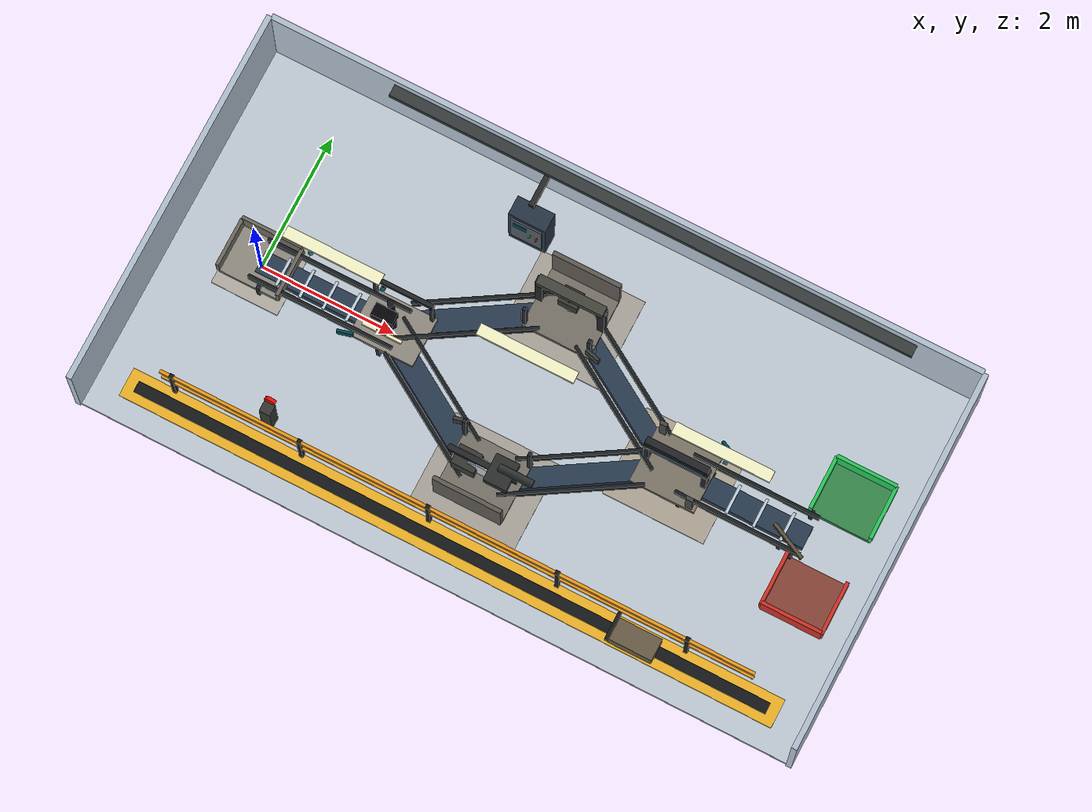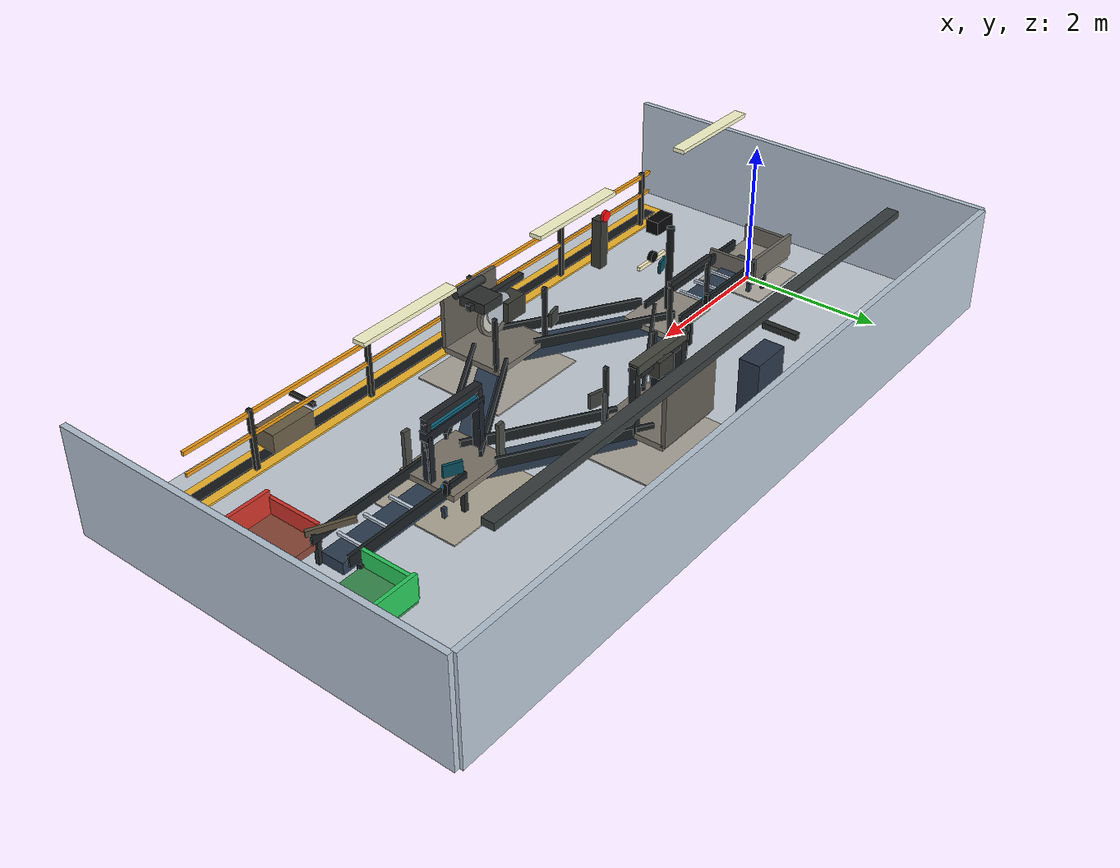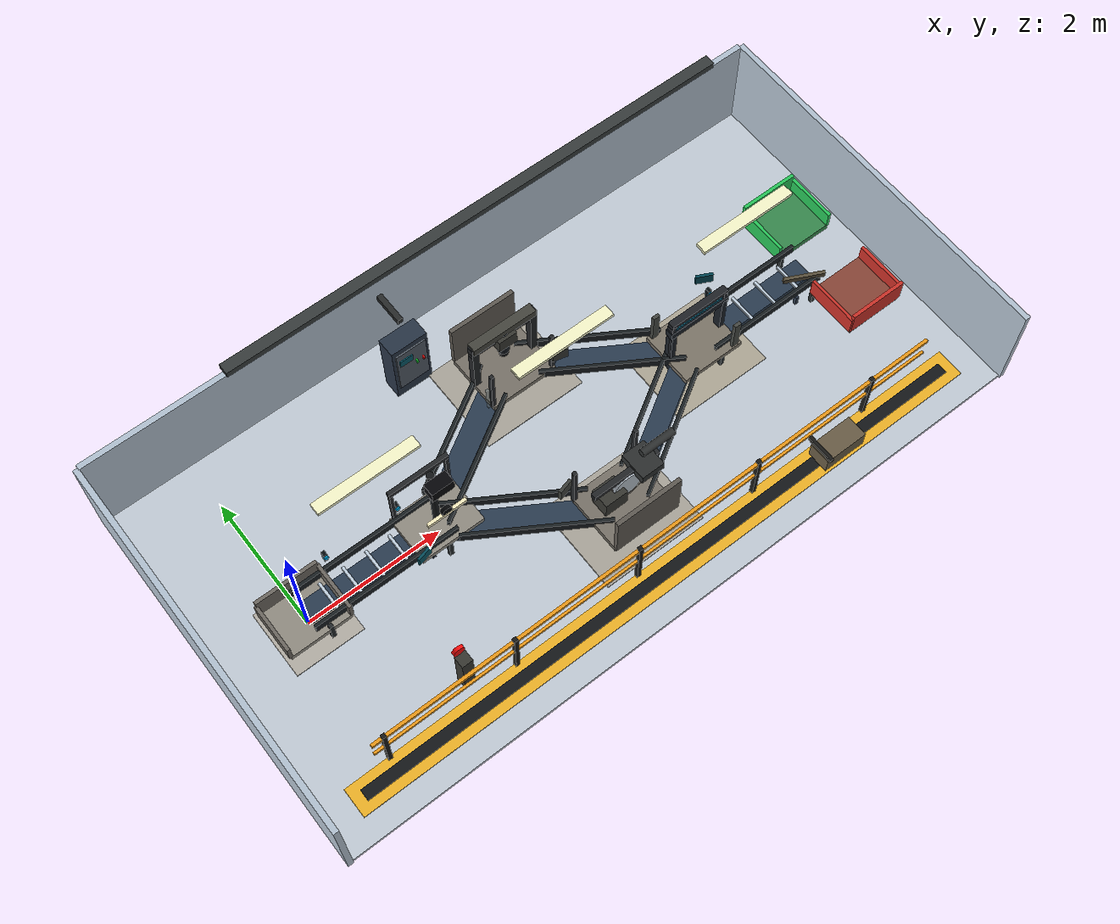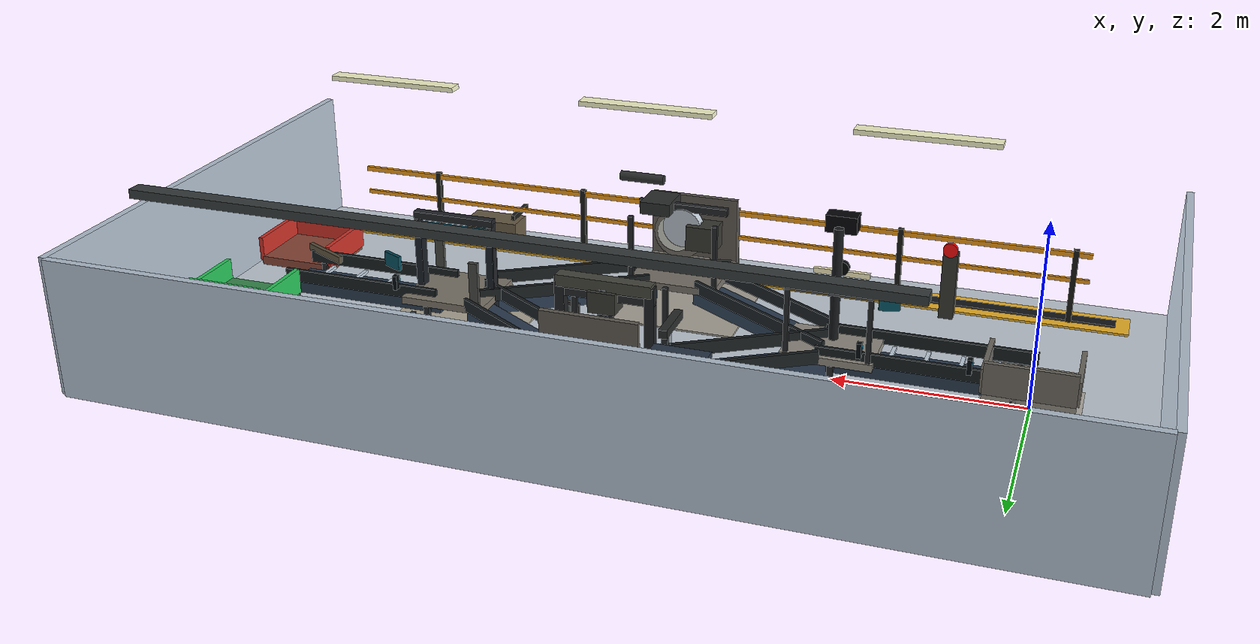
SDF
<?xml version="1.0" ?>
<sdf version="1.10">
  <world name="reconfactory_world">
    <plugin
      filename="gz-sim-physics-system"
      name="gz::sim::systems::Physics" />
    <plugin
      filename="gz-sim-user-commands-system"
      name="gz::sim::systems::UserCommands" />
    <plugin
      filename="gz-sim-sensors-system"
      name="gz::sim::systems::Sensors" />
    <plugin
      filename="gz-sim-scene-broadcaster-system"
      name="gz::sim::systems::SceneBroadcaster" />

    <physics name="default_physics" type="ode">
      <max_step_size>0.01</max_step_size>
      <real_time_factor>1.0</real_time_factor>
    </physics>

    <scene>
      <ambient>0.72 0.76 0.82 1</ambient>
      <background>0.86 0.91 0.96 1</background>
      <shadows>true</shadows>
    </scene>

    <gui fullscreen="false">
      <camera name="user_camera">
        <pose>4.8 -7.8 5.2 0 0.58 0.68</pose>
      </camera>
    </gui>

    <light name="sun" type="directional">
      <pose>0 0 9 0 0 0</pose>
      <diffuse>0.95 0.95 0.9 1</diffuse>
      <specular>0.25 0.25 0.25 1</specular>
      <direction>-0.45 0.25 -1</direction>
    </light>

    <light name="factory_area_light" type="point">
      <pose>4 0 5 0 0 0</pose>
      <diffuse>0.8 0.86 1.0 1</diffuse>
      <specular>0.3 0.3 0.3 1</specular>
      <attenuation>
        <range>15</range>
        <constant>0.8</constant>
        <linear>0.02</linear>
        <quadratic>0.002</quadratic>
      </attenuation>
    </light>

    <model name="factory_floor">
      <static>true</static>
      <pose>4 0 -0.03 0 0 0</pose>
      <link name="floor_link">
        <collision name="collision">
          <geometry><box><size>10.5 5.5 0.06</size></box></geometry>
        </collision>
        <visual name="visual">
          <geometry><box><size>10.5 5.5 0.06</size></box></geometry>
          <material>
            <ambient>0.78 0.82 0.86 1</ambient>
            <diffuse>0.78 0.82 0.86 1</diffuse>
            <specular>0.12 0.12 0.12 1</specular>
          </material>
        </visual>
      </link>
    </model>

    <model name="factory_shell_and_safety_details">
      <static>true</static>
      <pose>0 0 0 0 0 0</pose>
      <link name="details">
        <visual name="back_wall">
          <pose>4 2.78 0.72 0 0 0</pose>
          <geometry><box><size>10.5 0.08 1.5</size></box></geometry>
          <material><ambient>0.72 0.78 0.84 1</ambient><diffuse>0.72 0.78 0.84 1</diffuse></material>
        </visual>
        <visual name="left_wall">
          <pose>-1.28 0 0.72 0 0 0</pose>
          <geometry><box><size>0.08 5.55 1.5</size></box></geometry>
          <material><ambient>0.72 0.78 0.84 1</ambient><diffuse>0.72 0.78 0.84 1</diffuse></material>
        </visual>
        <visual name="right_wall">
          <pose>9.28 0 0.72 0 0 0</pose>
          <geometry><box><size>0.08 5.55 1.5</size></box></geometry>
          <material><ambient>0.72 0.78 0.84 1</ambient><diffuse>0.72 0.78 0.84 1</diffuse></material>
        </visual>
        <visual name="operator_walkway">
          <pose>4 -2.22 0.02 0 0 0</pose>
          <geometry><box><size>9.7 0.42 0.025</size></box></geometry>
          <material><ambient>0.96 0.72 0.16 1</ambient><diffuse>0.96 0.72 0.16 1</diffuse></material>
        </visual>
        <visual name="walkway_center">
          <pose>4 -2.22 0.04 0 0 0</pose>
          <geometry><box><size>9.4 0.16 0.025</size></box></geometry>
          <material><ambient>0.08 0.09 0.10 1</ambient><diffuse>0.08 0.09 0.10 1</diffuse></material>
        </visual>
        <visual name="input_zone_marking">
          <pose>0 0 0.015 0 0 0</pose>
          <geometry><box><size>1.0 1.0 0.02</size></box></geometry>
          <material><ambient>0.72 0.70 0.66 1</ambient><diffuse>0.72 0.70 0.66 1</diffuse></material>
        </visual>
        <visual name="cell_a_zone_marking">
          <pose>4 1.25 0.015 0 0 0</pose>
          <geometry><box><size>1.55 1.35 0.02</size></box></geometry>
          <material><ambient>0.68 0.66 0.62 1</ambient><diffuse>0.68 0.66 0.62 1</diffuse></material>
        </visual>
        <visual name="cell_b_zone_marking">
          <pose>4 -1.25 0.015 0 0 0</pose>
          <geometry><box><size>1.55 1.35 0.02</size></box></geometry>
          <material><ambient>0.68 0.66 0.62 1</ambient><diffuse>0.68 0.66 0.62 1</diffuse></material>
        </visual>
        <visual name="quality_zone_marking">
          <pose>6.2 0 0.015 0 0 0</pose>
          <geometry><box><size>1.5 1.3 0.02</size></box></geometry>
          <material><ambient>0.70 0.67 0.60 1</ambient><diffuse>0.70 0.67 0.60 1</diffuse></material>
        </visual>
        <visual name="overhead_light_1"><pose>1.2 0 2.7 0 0 0</pose><geometry><box><size>1.4 0.16 0.05</size></box></geometry><material><ambient>1 1 0.82 1</ambient><diffuse>1 1 0.82 1</diffuse><emissive>0.55 0.55 0.35 1</emissive></material></visual>
        <visual name="overhead_light_2"><pose>4.0 0 2.7 0 0 0</pose><geometry><box><size>1.4 0.16 0.05</size></box></geometry><material><ambient>1 1 0.82 1</ambient><diffuse>1 1 0.82 1</diffuse><emissive>0.55 0.55 0.35 1</emissive></material></visual>
        <visual name="overhead_light_3"><pose>6.8 0 2.7 0 0 0</pose><geometry><box><size>1.4 0.16 0.05</size></box></geometry><material><ambient>1 1 0.82 1</ambient><diffuse>1 1 0.82 1</diffuse><emissive>0.55 0.55 0.35 1</emissive></material></visual>
      </link>
    </model>

    <model name="conveyor_rollers_supports_and_machine_panels">
      <static>true</static>
      <pose>0 0 0 0 0 0</pose>
      <link name="details">
        <visual name="main_roller_1"><pose>0.35 0 0.355 0 0 0</pose><geometry><box><size>0.04 0.42 0.035</size></box></geometry><material><ambient>0.78 0.84 0.9 1</ambient><diffuse>0.78 0.84 0.9 1</diffuse></material></visual>
        <visual name="main_roller_2"><pose>0.7 0 0.355 0 0 0</pose><geometry><box><size>0.04 0.42 0.035</size></box></geometry><material><ambient>0.78 0.84 0.9 1</ambient><diffuse>0.78 0.84 0.9 1</diffuse></material></visual>
        <visual name="main_roller_3"><pose>1.05 0 0.355 0 0 0</pose><geometry><box><size>0.04 0.42 0.035</size></box></geometry><material><ambient>0.78 0.84 0.9 1</ambient><diffuse>0.78 0.84 0.9 1</diffuse></material></visual>
        <visual name="main_roller_4"><pose>1.4 0 0.355 0 0 0</pose><geometry><box><size>0.04 0.42 0.035</size></box></geometry><material><ambient>0.78 0.84 0.9 1</ambient><diffuse>0.78 0.84 0.9 1</diffuse></material></visual>
        <visual name="main_roller_5"><pose>1.75 0 0.355 0 0 0</pose><geometry><box><size>0.04 0.42 0.035</size></box></geometry><material><ambient>0.78 0.84 0.9 1</ambient><diffuse>0.78 0.84 0.9 1</diffuse></material></visual>
        <visual name="out_roller_1"><pose>6.65 0 0.355 0 0 0</pose><geometry><box><size>0.04 0.42 0.035</size></box></geometry><material><ambient>0.78 0.84 0.9 1</ambient><diffuse>0.78 0.84 0.9 1</diffuse></material></visual>
        <visual name="out_roller_2"><pose>7.05 0 0.355 0 0 0</pose><geometry><box><size>0.04 0.42 0.035</size></box></geometry><material><ambient>0.78 0.84 0.9 1</ambient><diffuse>0.78 0.84 0.9 1</diffuse></material></visual>
        <visual name="out_roller_3"><pose>7.45 0 0.355 0 0 0</pose><geometry><box><size>0.04 0.42 0.035</size></box></geometry><material><ambient>0.78 0.84 0.9 1</ambient><diffuse>0.78 0.84 0.9 1</diffuse></material></visual>
        <visual name="out_roller_4"><pose>7.85 0 0.355 0 0 0</pose><geometry><box><size>0.04 0.42 0.035</size></box></geometry><material><ambient>0.78 0.84 0.9 1</ambient><diffuse>0.78 0.84 0.9 1</diffuse></material></visual>
        <visual name="leg_1"><pose>0.35 0.23 0.0 0 0 0</pose><geometry><box><size>0.05 0.05 0.32</size></box></geometry><material><ambient>0.18 0.23 0.3 1</ambient><diffuse>0.18 0.23 0.3 1</diffuse></material></visual>
        <visual name="leg_2"><pose>1.75 -0.23 0.0 0 0 0</pose><geometry><box><size>0.05 0.05 0.32</size></box></geometry><material><ambient>0.18 0.23 0.3 1</ambient><diffuse>0.18 0.23 0.3 1</diffuse></material></visual>
        <visual name="leg_3"><pose>6.65 0.23 0.0 0 0 0</pose><geometry><box><size>0.05 0.05 0.32</size></box></geometry><material><ambient>0.18 0.23 0.3 1</ambient><diffuse>0.18 0.23 0.3 1</diffuse></material></visual>
        <visual name="leg_4"><pose>7.85 -0.23 0.0 0 0 0</pose><geometry><box><size>0.05 0.05 0.32</size></box></geometry><material><ambient>0.18 0.23 0.3 1</ambient><diffuse>0.18 0.23 0.3 1</diffuse></material></visual>
        <visual name="plc_cabinet">
          <pose>3.0 2.05 0.55 0 0 0</pose>
          <geometry><box><size>0.55 0.28 1.1</size></box></geometry>
          <material><ambient>0.16 0.21 0.28 1</ambient><diffuse>0.16 0.21 0.28 1</diffuse></material>
        </visual>
        <visual name="drill_head">
          <pose>4.0 1.25 1.05 0 0 0</pose>
          <geometry><cylinder><radius>0.08</radius><length>0.45</length></cylinder></geometry>
          <material><ambient>0.08 0.1 0.12 1</ambient><diffuse>0.08 0.1 0.12 1</diffuse></material>
        </visual>
        <visual name="polish_wheel">
          <pose>4.0 -1.25 0.96 1.5708 0 0</pose>
          <geometry><cylinder><radius>0.22</radius><length>0.12</length></cylinder></geometry>
          <material><ambient>0.74 0.78 0.82 1</ambient><diffuse>0.74 0.78 0.82 1</diffuse></material>
        </visual>
        <visual name="quality_scan_arch_top">
          <pose>6.2 0 1.05 0 0 0</pose>
          <geometry><box><size>0.95 0.12 0.12</size></box></geometry>
          <material><ambient>0.1 0.12 0.15 1</ambient><diffuse>0.1 0.12 0.15 1</diffuse></material>
        </visual>
        <visual name="quality_scan_arch_left">
          <pose>5.78 0 0.62 0 0 0</pose>
          <geometry><box><size>0.08 0.12 0.86</size></box></geometry>
          <material><ambient>0.1 0.12 0.15 1</ambient><diffuse>0.1 0.12 0.15 1</diffuse></material>
        </visual>
        <visual name="quality_scan_arch_right">
          <pose>6.62 0 0.62 0 0 0</pose>
          <geometry><box><size>0.08 0.12 0.86</size></box></geometry>
          <material><ambient>0.1 0.12 0.15 1</ambient><diffuse>0.1 0.12 0.15 1</diffuse></material>
        </visual>
      </link>
    </model>

    <!-- Main input, routing branches, and output conveyors. -->
    <model name="conveyor_input_to_vision">
      <static>true</static>
      <pose>1.05 0 0.24 0 0 0</pose>
      <link name="body">
        <collision name="collision"><geometry><box><size>2.1 0.32 0.16</size></box></geometry></collision>
        <visual name="belt"><geometry><box><size>2.1 0.32 0.16</size></box></geometry><material><ambient>0.17 0.24 0.32 1</ambient><diffuse>0.17 0.24 0.32 1</diffuse></material></visual>
      </link>
    </model>
    <model name="junction_to_station_a">
      <static>true</static>
      <pose>2.9 0.62 0.24 0 0 0.55</pose>
      <link name="body">
        <collision name="collision"><geometry><box><size>1.9 0.32 0.16</size></box></geometry></collision>
        <visual name="belt"><geometry><box><size>1.9 0.32 0.16</size></box></geometry><material><ambient>0.17 0.24 0.32 1</ambient><diffuse>0.17 0.24 0.32 1</diffuse></material></visual>
      </link>
    </model>
    <model name="junction_to_station_b">
      <static>true</static>
      <pose>2.9 -0.62 0.24 0 0 -0.55</pose>
      <link name="body">
        <collision name="collision"><geometry><box><size>1.9 0.32 0.16</size></box></geometry></collision>
        <visual name="belt"><geometry><box><size>1.9 0.32 0.16</size></box></geometry><material><ambient>0.17 0.24 0.32 1</ambient><diffuse>0.17 0.24 0.32 1</diffuse></material></visual>
      </link>
    </model>
    <model name="station_a_to_quality">
      <static>true</static>
      <pose>5.1 0.62 0.24 0 0 -0.55</pose>
      <link name="body">
        <collision name="collision"><geometry><box><size>1.9 0.28 0.16</size></box></geometry></collision>
        <visual name="belt"><geometry><box><size>1.9 0.28 0.16</size></box></geometry><material><ambient>0.17 0.24 0.32 1</ambient><diffuse>0.17 0.24 0.32 1</diffuse></material></visual>
      </link>
    </model>
    <model name="station_b_to_quality">
      <static>true</static>
      <pose>5.1 -0.62 0.24 0 0 0.55</pose>
      <link name="body">
        <collision name="collision"><geometry><box><size>1.9 0.28 0.16</size></box></geometry></collision>
        <visual name="belt"><geometry><box><size>1.9 0.28 0.16</size></box></geometry><material><ambient>0.17 0.24 0.32 1</ambient><diffuse>0.17 0.24 0.32 1</diffuse></material></visual>
      </link>
    </model>
    <model name="quality_to_outputs">
      <static>true</static>
      <pose>7.25 0 0.24 0 0 0</pose>
      <link name="body">
        <collision name="collision"><geometry><box><size>1.8 0.32 0.16</size></box></geometry></collision>
        <visual name="belt"><geometry><box><size>1.8 0.32 0.16</size></box></geometry><material><ambient>0.17 0.24 0.32 1</ambient><diffuse>0.17 0.24 0.32 1</diffuse></material></visual>
      </link>
    </model>

    <!-- Stations use distinct colors so faults and routing are understandable from a screenshot. -->
    <model name="input_station">
      <static>true</static>
      <pose>0 0 0.32 0 0 0</pose>
      <link name="body">
        <visual name="low_tray"><pose>0 0 -0.06 0 0 0</pose><geometry><box><size>0.9 0.72 0.08</size></box></geometry><material><ambient>0.50 0.49 0.46 1</ambient><diffuse>0.58 0.56 0.52 1</diffuse></material></visual>
        <visual name="rear_lip"><pose>0 0.36 0.14 0 0 0</pose><geometry><box><size>0.9 0.05 0.34</size></box></geometry><material><ambient>0.36 0.35 0.33 1</ambient><diffuse>0.44 0.42 0.39 1</diffuse></material></visual>
        <visual name="left_lip"><pose>-0.45 0 0.10 0 0 0</pose><geometry><box><size>0.05 0.72 0.26</size></box></geometry><material><ambient>0.36 0.35 0.33 1</ambient><diffuse>0.44 0.42 0.39 1</diffuse></material></visual>
        <visual name="right_lip"><pose>0.45 0 0.10 0 0 0</pose><geometry><box><size>0.05 0.72 0.26</size></box></geometry><material><ambient>0.36 0.35 0.33 1</ambient><diffuse>0.44 0.42 0.39 1</diffuse></material></visual>
      </link>
    </model>
    <model name="vision_camera_station">
      <static>true</static>
      <pose>2.0 0 0.42 0 0 0</pose>
      <link name="body">
        <visual name="inspection_table"><pose>0 0 -0.05 0 0 0</pose><geometry><box><size>0.95 0.72 0.08</size></box></geometry><material><ambient>0.50 0.49 0.46 1</ambient><diffuse>0.58 0.56 0.52 1</diffuse></material></visual>
        <visual name="left_post"><pose>-0.42 0.32 0.34 0 0 0</pose><geometry><box><size>0.05 0.05 0.72</size></box></geometry><material><ambient>0.12 0.13 0.14 1</ambient><diffuse>0.14 0.15 0.16 1</diffuse></material></visual>
        <visual name="right_post"><pose>0.42 0.32 0.34 0 0 0</pose><geometry><box><size>0.05 0.05 0.72</size></box></geometry><material><ambient>0.12 0.13 0.14 1</ambient><diffuse>0.14 0.15 0.16 1</diffuse></material></visual>
        <visual name="top_bar"><pose>0 0.32 0.72 0 0 0</pose><geometry><box><size>0.9 0.06 0.08</size></box></geometry><material><ambient>0.12 0.13 0.14 1</ambient><diffuse>0.14 0.15 0.16 1</diffuse></material></visual>
        <visual name="camera_pole"><pose>0 0 0.65 0 0 0</pose><geometry><cylinder><radius>0.05</radius><length>1.2</length></cylinder></geometry><material><ambient>0.08 0.09 0.1 1</ambient><diffuse>0.08 0.09 0.1 1</diffuse></material></visual>
        <visual name="camera_head"><pose>0 -0.18 1.25 0 0 0</pose><geometry><box><size>0.32 0.18 0.18</size></box></geometry><material><ambient>0.02 0.02 0.03 1</ambient><diffuse>0.02 0.02 0.03 1</diffuse></material></visual>
        <sensor name="rgb_inspection_camera" type="camera">
          <!-- Place the lens below the opaque camera housing, looking down. -->
          <pose>0 -0.22 1.14 0 1.5708 0</pose>
          <topic>/reconfactory/vision/image_raw</topic>
          <update_rate>15</update_rate>
          <camera>
            <horizontal_fov>1.20</horizontal_fov>
            <image>
              <width>640</width>
              <height>480</height>
              <format>R8G8B8</format>
            </image>
            <clip>
              <near>0.05</near>
              <far>8.0</far>
            </clip>
          </camera>
          <always_on>true</always_on>
          <visualize>true</visualize>
        </sensor>
      </link>
    </model>
    <model name="processing_station_a">
      <static>true</static>
      <pose>4.0 1.25 0.45 0 0 0</pose>
      <link name="body">
        <visual name="work_plate"><pose>0 0 -0.05 0 0 0</pose><geometry><box><size>1.0 0.9 0.08</size></box></geometry><material><ambient>0.40 0.39 0.36 1</ambient><diffuse>0.48 0.46 0.42 1</diffuse></material></visual>
        <visual name="rear_panel"><pose>0 0.45 0.34 0 0 0</pose><geometry><box><size>1.0 0.06 0.76</size></box></geometry><material><ambient>0.30 0.29 0.27 1</ambient><diffuse>0.38 0.36 0.33 1</diffuse></material></visual>
        <visual name="left_front_post"><pose>-0.48 -0.40 0.34 0 0 0</pose><geometry><box><size>0.055 0.055 0.76</size></box></geometry><material><ambient>0.12 0.13 0.14 1</ambient><diffuse>0.14 0.15 0.16 1</diffuse></material></visual>
        <visual name="right_front_post"><pose>0.48 -0.40 0.34 0 0 0</pose><geometry><box><size>0.055 0.055 0.76</size></box></geometry><material><ambient>0.12 0.13 0.14 1</ambient><diffuse>0.14 0.15 0.16 1</diffuse></material></visual>
        <visual name="top_frame"><pose>0 0 0.74 0 0 0</pose><geometry><box><size>1.02 0.08 0.08</size></box></geometry><material><ambient>0.12 0.13 0.14 1</ambient><diffuse>0.14 0.15 0.16 1</diffuse></material></visual>
      </link>
    </model>
    <model name="processing_station_b">
      <static>true</static>
      <pose>4.0 -1.25 0.45 0 0 0</pose>
      <link name="body">
        <visual name="work_plate"><pose>0 0 -0.05 0 0 0</pose><geometry><box><size>1.0 0.9 0.08</size></box></geometry><material><ambient>0.40 0.39 0.36 1</ambient><diffuse>0.48 0.46 0.42 1</diffuse></material></visual>
        <visual name="rear_panel"><pose>0 -0.45 0.34 0 0 0</pose><geometry><box><size>1.0 0.06 0.76</size></box></geometry><material><ambient>0.30 0.29 0.27 1</ambient><diffuse>0.38 0.36 0.33 1</diffuse></material></visual>
        <visual name="left_front_post"><pose>-0.48 0.40 0.34 0 0 0</pose><geometry><box><size>0.055 0.055 0.76</size></box></geometry><material><ambient>0.12 0.13 0.14 1</ambient><diffuse>0.14 0.15 0.16 1</diffuse></material></visual>
        <visual name="right_front_post"><pose>0.48 0.40 0.34 0 0 0</pose><geometry><box><size>0.055 0.055 0.76</size></box></geometry><material><ambient>0.12 0.13 0.14 1</ambient><diffuse>0.14 0.15 0.16 1</diffuse></material></visual>
        <visual name="top_frame"><pose>0 0 0.74 0 0 0</pose><geometry><box><size>1.02 0.08 0.08</size></box></geometry><material><ambient>0.12 0.13 0.14 1</ambient><diffuse>0.14 0.15 0.16 1</diffuse></material></visual>
      </link>
    </model>
    <model name="quality_control_station">
      <static>true</static>
      <pose>6.2 0 0.42 0 0 0</pose>
      <link name="body">
        <visual name="scan_table"><pose>0 0 -0.04 0 0 0</pose><geometry><box><size>0.95 0.82 0.08</size></box></geometry><material><ambient>0.40 0.38 0.34 1</ambient><diffuse>0.50 0.47 0.42 1</diffuse></material></visual>
        <visual name="left_arch"><pose>-0.43 0 0.38 0 0 0</pose><geometry><box><size>0.06 0.10 0.86</size></box></geometry><material><ambient>0.11 0.12 0.14 1</ambient><diffuse>0.13 0.14 0.16 1</diffuse></material></visual>
        <visual name="right_arch"><pose>0.43 0 0.38 0 0 0</pose><geometry><box><size>0.06 0.10 0.86</size></box></geometry><material><ambient>0.11 0.12 0.14 1</ambient><diffuse>0.13 0.14 0.16 1</diffuse></material></visual>
        <visual name="top_arch"><pose>0 0 0.82 0 0 0</pose><geometry><box><size>0.92 0.10 0.08</size></box></geometry><material><ambient>0.11 0.12 0.14 1</ambient><diffuse>0.13 0.14 0.16 1</diffuse></material></visual>
      </link>
    </model>
    <model name="accepted_output_bin">
      <static>true</static>
      <pose>8.45 0.72 0.25 0 0 0</pose>
      <link name="body">
        <visual name="tray"><pose>0 0 0 0 0 0</pose><geometry><box><size>0.88 0.78 0.10</size></box></geometry><material><ambient>0.18 0.43 0.25 1</ambient><diffuse>0.22 0.55 0.31 1</diffuse></material></visual>
        <visual name="back_lip"><pose>0 0.38 0.18 0 0 0</pose><geometry><box><size>0.88 0.05 0.36</size></box></geometry><material><ambient>0.12 0.65 0.28 1</ambient><diffuse>0.16 0.8 0.36 1</diffuse></material></visual>
        <visual name="side_lip_l"><pose>-0.44 0 0.14 0 0 0</pose><geometry><box><size>0.05 0.78 0.28</size></box></geometry><material><ambient>0.12 0.65 0.28 1</ambient><diffuse>0.16 0.8 0.36 1</diffuse></material></visual>
        <visual name="side_lip_r"><pose>0.44 0 0.14 0 0 0</pose><geometry><box><size>0.05 0.78 0.28</size></box></geometry><material><ambient>0.12 0.65 0.28 1</ambient><diffuse>0.16 0.8 0.36 1</diffuse></material></visual>
      </link>
    </model>
    <model name="reject_output_bin">
      <static>true</static>
      <pose>8.45 -0.72 0.25 0 0 0</pose>
      <link name="body">
        <visual name="tray"><pose>0 0 0 0 0 0</pose><geometry><box><size>0.88 0.78 0.10</size></box></geometry><material><ambient>0.43 0.22 0.18 1</ambient><diffuse>0.55 0.28 0.22 1</diffuse></material></visual>
        <visual name="back_lip"><pose>0 -0.38 0.18 0 0 0</pose><geometry><box><size>0.88 0.05 0.36</size></box></geometry><material><ambient>0.65 0.16 0.12 1</ambient><diffuse>0.82 0.20 0.16 1</diffuse></material></visual>
        <visual name="side_lip_l"><pose>-0.44 0 0.14 0 0 0</pose><geometry><box><size>0.05 0.78 0.28</size></box></geometry><material><ambient>0.65 0.16 0.12 1</ambient><diffuse>0.82 0.20 0.16 1</diffuse></material></visual>
        <visual name="side_lip_r"><pose>0.44 0 0.14 0 0 0</pose><geometry><box><size>0.05 0.78 0.28</size></box></geometry><material><ambient>0.65 0.16 0.12 1</ambient><diffuse>0.82 0.20 0.16 1</diffuse></material></visual>
      </link>
    </model>

    <model name="factory_realism_detail_pack">
      <static>true</static>
      <pose>0 0 0 0 0 0</pose>
      <link name="details">
        <!-- Conveyor guard rails and support frames. -->
        <visual name="input_left_guard"><pose>1.05 0.28 0.43 0 0 0</pose><geometry><box><size>2.15 0.045 0.14</size></box></geometry><material><ambient>0.08 0.10 0.11 1</ambient><diffuse>0.10 0.12 0.13 1</diffuse></material></visual>
        <visual name="input_right_guard"><pose>1.05 -0.28 0.43 0 0 0</pose><geometry><box><size>2.15 0.045 0.14</size></box></geometry><material><ambient>0.08 0.10 0.11 1</ambient><diffuse>0.10 0.12 0.13 1</diffuse></material></visual>
        <visual name="output_left_guard"><pose>7.25 0.28 0.43 0 0 0</pose><geometry><box><size>1.85 0.045 0.14</size></box></geometry><material><ambient>0.08 0.10 0.11 1</ambient><diffuse>0.10 0.12 0.13 1</diffuse></material></visual>
        <visual name="output_right_guard"><pose>7.25 -0.28 0.43 0 0 0</pose><geometry><box><size>1.85 0.045 0.14</size></box></geometry><material><ambient>0.08 0.10 0.11 1</ambient><diffuse>0.10 0.12 0.13 1</diffuse></material></visual>
        <visual name="a_feed_left_guard"><pose>2.9 0.89 0.43 0 0 0.55</pose><geometry><box><size>1.95 0.045 0.14</size></box></geometry><material><ambient>0.08 0.10 0.11 1</ambient><diffuse>0.10 0.12 0.13 1</diffuse></material></visual>
        <visual name="a_feed_right_guard"><pose>2.9 0.35 0.43 0 0 0.55</pose><geometry><box><size>1.95 0.045 0.14</size></box></geometry><material><ambient>0.08 0.10 0.11 1</ambient><diffuse>0.10 0.12 0.13 1</diffuse></material></visual>
        <visual name="b_feed_left_guard"><pose>2.9 -0.35 0.43 0 0 -0.55</pose><geometry><box><size>1.95 0.045 0.14</size></box></geometry><material><ambient>0.08 0.10 0.11 1</ambient><diffuse>0.10 0.12 0.13 1</diffuse></material></visual>
        <visual name="b_feed_right_guard"><pose>2.9 -0.89 0.43 0 0 -0.55</pose><geometry><box><size>1.95 0.045 0.14</size></box></geometry><material><ambient>0.08 0.10 0.11 1</ambient><diffuse>0.10 0.12 0.13 1</diffuse></material></visual>
        <visual name="a_return_left_guard"><pose>5.1 0.89 0.43 0 0 -0.55</pose><geometry><box><size>1.95 0.045 0.14</size></box></geometry><material><ambient>0.08 0.10 0.11 1</ambient><diffuse>0.10 0.12 0.13 1</diffuse></material></visual>
        <visual name="a_return_right_guard"><pose>5.1 0.35 0.43 0 0 -0.55</pose><geometry><box><size>1.95 0.045 0.14</size></box></geometry><material><ambient>0.08 0.10 0.11 1</ambient><diffuse>0.10 0.12 0.13 1</diffuse></material></visual>
        <visual name="b_return_left_guard"><pose>5.1 -0.35 0.43 0 0 0.55</pose><geometry><box><size>1.95 0.045 0.14</size></box></geometry><material><ambient>0.08 0.10 0.11 1</ambient><diffuse>0.10 0.12 0.13 1</diffuse></material></visual>
        <visual name="b_return_right_guard"><pose>5.1 -0.89 0.43 0 0 0.55</pose><geometry><box><size>1.95 0.045 0.14</size></box></geometry><material><ambient>0.08 0.10 0.11 1</ambient><diffuse>0.10 0.12 0.13 1</diffuse></material></visual>

        <visual name="input_support_1"><pose>0.15 0.33 0.17 0 0 0</pose><geometry><box><size>0.06 0.06 0.34</size></box></geometry><material><ambient>0.12 0.14 0.15 1</ambient><diffuse>0.14 0.16 0.17 1</diffuse></material></visual>
        <visual name="input_support_2"><pose>0.15 -0.33 0.17 0 0 0</pose><geometry><box><size>0.06 0.06 0.34</size></box></geometry><material><ambient>0.12 0.14 0.15 1</ambient><diffuse>0.14 0.16 0.17 1</diffuse></material></visual>
        <visual name="input_support_3"><pose>1.95 0.33 0.17 0 0 0</pose><geometry><box><size>0.06 0.06 0.34</size></box></geometry><material><ambient>0.12 0.14 0.15 1</ambient><diffuse>0.14 0.16 0.17 1</diffuse></material></visual>
        <visual name="input_support_4"><pose>1.95 -0.33 0.17 0 0 0</pose><geometry><box><size>0.06 0.06 0.34</size></box></geometry><material><ambient>0.12 0.14 0.15 1</ambient><diffuse>0.14 0.16 0.17 1</diffuse></material></visual>
        <visual name="output_support_1"><pose>6.42 0.33 0.17 0 0 0</pose><geometry><box><size>0.06 0.06 0.34</size></box></geometry><material><ambient>0.12 0.14 0.15 1</ambient><diffuse>0.14 0.16 0.17 1</diffuse></material></visual>
        <visual name="output_support_2"><pose>6.42 -0.33 0.17 0 0 0</pose><geometry><box><size>0.06 0.06 0.34</size></box></geometry><material><ambient>0.12 0.14 0.15 1</ambient><diffuse>0.14 0.16 0.17 1</diffuse></material></visual>
        <visual name="output_support_3"><pose>8.05 0.33 0.17 0 0 0</pose><geometry><box><size>0.06 0.06 0.34</size></box></geometry><material><ambient>0.12 0.14 0.15 1</ambient><diffuse>0.14 0.16 0.17 1</diffuse></material></visual>
        <visual name="output_support_4"><pose>8.05 -0.33 0.17 0 0 0</pose><geometry><box><size>0.06 0.06 0.34</size></box></geometry><material><ambient>0.12 0.14 0.15 1</ambient><diffuse>0.14 0.16 0.17 1</diffuse></material></visual>

        <!-- Product sensors and scanner gates along the conveyor. -->
        <visual name="input_photoeye_left"><pose>0.58 0.38 0.57 0 0 0</pose><geometry><box><size>0.05 0.07 0.16</size></box></geometry><material><ambient>0.02 0.04 0.05 1</ambient><diffuse>0.02 0.04 0.05 1</diffuse></material></visual>
        <visual name="input_photoeye_lens"><pose>0.58 0.34 0.58 1.5708 0 0</pose><geometry><cylinder><radius>0.032</radius><length>0.025</length></cylinder></geometry><material><ambient>0.0 0.35 0.50 1</ambient><diffuse>0.0 0.70 0.95 1</diffuse><emissive>0.0 0.10 0.16 1</emissive></material></visual>
        <visual name="vision_photoeye_left"><pose>1.66 0.38 0.57 0 0 0</pose><geometry><box><size>0.05 0.07 0.16</size></box></geometry><material><ambient>0.02 0.04 0.05 1</ambient><diffuse>0.02 0.04 0.05 1</diffuse></material></visual>
        <visual name="vision_photoeye_lens"><pose>1.66 0.34 0.58 1.5708 0 0</pose><geometry><cylinder><radius>0.032</radius><length>0.025</length></cylinder></geometry><material><ambient>0.0 0.35 0.50 1</ambient><diffuse>0.0 0.70 0.95 1</diffuse><emissive>0.0 0.10 0.16 1</emissive></material></visual>
        <visual name="quality_photoeye_left"><pose>6.75 0.38 0.57 0 0 0</pose><geometry><box><size>0.05 0.07 0.16</size></box></geometry><material><ambient>0.02 0.04 0.05 1</ambient><diffuse>0.02 0.04 0.05 1</diffuse></material></visual>
        <visual name="quality_photoeye_lens"><pose>6.75 0.34 0.58 1.5708 0 0</pose><geometry><cylinder><radius>0.032</radius><length>0.025</length></cylinder></geometry><material><ambient>0.0 0.35 0.50 1</ambient><diffuse>0.0 0.70 0.95 1</diffuse><emissive>0.0 0.10 0.16 1</emissive></material></visual>

        <!-- Industrial control cabinets, cable trays, and conduit. -->
        <visual name="overhead_cable_tray"><pose>4.55 2.43 2.15 0 0 0</pose><geometry><box><size>7.6 0.16 0.09</size></box></geometry><material><ambient>0.18 0.20 0.20 1</ambient><diffuse>0.22 0.24 0.24 1</diffuse></material></visual>
        <visual name="plc_door_panel"><pose>3.0 1.895 0.62 0 0 0</pose><geometry><box><size>0.46 0.025 0.78</size></box></geometry><material><ambient>0.26 0.30 0.33 1</ambient><diffuse>0.32 0.36 0.40 1</diffuse></material></visual>
        <visual name="plc_screen"><pose>2.91 1.878 0.82 0 0 0</pose><geometry><box><size>0.20 0.02 0.12</size></box></geometry><material><ambient>0.02 0.08 0.10 1</ambient><diffuse>0.02 0.35 0.42 1</diffuse><emissive>0.0 0.08 0.10 1</emissive></material></visual>
        <visual name="plc_red_button"><pose>3.16 1.875 0.66 0 1.5708 0</pose><geometry><cylinder><radius>0.035</radius><length>0.02</length></cylinder></geometry><material><ambient>0.70 0.05 0.05 1</ambient><diffuse>0.95 0.08 0.08 1</diffuse></material></visual>
        <visual name="plc_green_button"><pose>3.06 1.875 0.66 0 1.5708 0</pose><geometry><cylinder><radius>0.035</radius><length>0.02</length></cylinder></geometry><material><ambient>0.05 0.45 0.12 1</ambient><diffuse>0.08 0.75 0.18 1</diffuse></material></visual>
        <visual name="plc_conduit"><pose>3.0 2.27 1.50 0 0 0</pose><geometry><box><size>0.08 0.46 0.08</size></box></geometry><material><ambient>0.13 0.14 0.14 1</ambient><diffuse>0.16 0.17 0.17 1</diffuse></material></visual>

        <!-- Vision inspection station: gantry camera, light bar, and open inspection plate. -->
        <visual name="vision_light_bar"><pose>2.0 -0.28 1.08 0 0 0</pose><geometry><box><size>0.58 0.045 0.055</size></box></geometry><material><ambient>0.95 0.92 0.72 1</ambient><diffuse>1.0 0.96 0.78 1</diffuse><emissive>0.25 0.23 0.16 1</emissive></material></visual>
        <visual name="vision_lens"><pose>2.0 -0.27 1.14 1.5708 0 0</pose><geometry><cylinder><radius>0.075</radius><length>0.06</length></cylinder></geometry><material><ambient>0.01 0.015 0.02 1</ambient><diffuse>0.01 0.015 0.02 1</diffuse><specular>0.45 0.45 0.45 1</specular></material></visual>
        <visual name="vision_hmi"><pose>1.52 -0.44 0.74 0 0 0.25</pose><geometry><box><size>0.22 0.035 0.16</size></box></geometry><material><ambient>0.02 0.07 0.09 1</ambient><diffuse>0.02 0.30 0.36 1</diffuse><emissive>0.0 0.06 0.08 1</emissive></material></visual>

        <!-- Drill / assembly station: portal frame, spindle, motor, guards, and control panel. -->
        <visual name="station_a_left_column"><pose>3.54 1.25 0.88 0 0 0</pose><geometry><box><size>0.10 0.10 0.92</size></box></geometry><material><ambient>0.10 0.11 0.12 1</ambient><diffuse>0.12 0.13 0.14 1</diffuse></material></visual>
        <visual name="station_a_right_column"><pose>4.46 1.25 0.88 0 0 0</pose><geometry><box><size>0.10 0.10 0.92</size></box></geometry><material><ambient>0.10 0.11 0.12 1</ambient><diffuse>0.12 0.13 0.14 1</diffuse></material></visual>
        <visual name="station_a_cross_slide"><pose>4.0 1.25 1.31 0 0 0</pose><geometry><box><size>0.98 0.14 0.12</size></box></geometry><material><ambient>0.22 0.22 0.20 1</ambient><diffuse>0.28 0.28 0.25 1</diffuse></material></visual>
        <visual name="station_a_motor"><pose>4.0 1.25 1.15 0 0 0</pose><geometry><box><size>0.28 0.24 0.22</size></box></geometry><material><ambient>0.16 0.16 0.15 1</ambient><diffuse>0.22 0.22 0.20 1</diffuse></material></visual>
        <visual name="station_a_chuck"><pose>4.0 1.25 0.82 0 0 0</pose><geometry><cylinder><radius>0.065</radius><length>0.18</length></cylinder></geometry><material><ambient>0.04 0.045 0.05 1</ambient><diffuse>0.05 0.055 0.06 1</diffuse><specular>0.28 0.28 0.28 1</specular></material></visual>
        <visual name="station_a_clear_guard_l"><pose>3.47 0.88 0.62 0 0 0</pose><geometry><box><size>0.04 0.04 0.44</size></box></geometry><material><ambient>0.42 0.47 0.48 1</ambient><diffuse>0.48 0.53 0.54 0.55</diffuse></material></visual>
        <visual name="station_a_clear_guard_r"><pose>4.53 0.88 0.62 0 0 0</pose><geometry><box><size>0.04 0.04 0.44</size></box></geometry><material><ambient>0.42 0.47 0.48 1</ambient><diffuse>0.48 0.53 0.54 0.55</diffuse></material></visual>
        <visual name="station_a_panel"><pose>4.56 0.78 0.74 0 0 -0.25</pose><geometry><box><size>0.22 0.045 0.20</size></box></geometry><material><ambient>0.18 0.19 0.18 1</ambient><diffuse>0.24 0.25 0.23 1</diffuse></material></visual>

        <!-- Drill / polish station: wheel guard, motor, extraction hood, and service panel. -->
        <visual name="station_b_motor"><pose>3.76 -1.25 0.88 0 0 0</pose><geometry><box><size>0.34 0.28 0.28</size></box></geometry><material><ambient>0.16 0.16 0.15 1</ambient><diffuse>0.22 0.22 0.20 1</diffuse></material></visual>
        <visual name="station_b_wheel_guard"><pose>4.04 -1.25 0.88 1.5708 0 0</pose><geometry><cylinder><radius>0.29</radius><length>0.055</length></cylinder></geometry><material><ambient>0.36 0.35 0.33 1</ambient><diffuse>0.45 0.43 0.40 1</diffuse></material></visual>
        <visual name="station_b_work_wheel"><pose>4.08 -1.25 0.88 1.5708 0 0</pose><geometry><cylinder><radius>0.21</radius><length>0.08</length></cylinder></geometry><material><ambient>0.72 0.72 0.68 1</ambient><diffuse>0.82 0.82 0.78 1</diffuse><specular>0.25 0.25 0.25 1</specular></material></visual>
        <visual name="station_b_extract_hood"><pose>4.27 -1.25 1.20 0 0 0</pose><geometry><box><size>0.34 0.40 0.14</size></box></geometry><material><ambient>0.12 0.13 0.13 1</ambient><diffuse>0.18 0.19 0.19 1</diffuse></material></visual>
        <visual name="station_b_extract_pipe"><pose>4.48 -1.25 1.48 0 1.5708 0</pose><geometry><cylinder><radius>0.055</radius><length>0.50</length></cylinder></geometry><material><ambient>0.13 0.14 0.14 1</ambient><diffuse>0.18 0.19 0.19 1</diffuse></material></visual>
        <visual name="station_b_panel"><pose>3.43 -0.78 0.72 0 0 0.25</pose><geometry><box><size>0.22 0.045 0.20</size></box></geometry><material><ambient>0.18 0.19 0.18 1</ambient><diffuse>0.24 0.25 0.23 1</diffuse></material></visual>

        <!-- Quality station: scanner tunnel, sensor bars, and reject diverter detail. -->
        <visual name="quality_tunnel_left_panel"><pose>5.82 0.37 0.66 0 0 0</pose><geometry><box><size>0.10 0.05 0.52</size></box></geometry><material><ambient>0.22 0.23 0.22 1</ambient><diffuse>0.28 0.29 0.27 1</diffuse></material></visual>
        <visual name="quality_tunnel_right_panel"><pose>6.58 -0.37 0.66 0 0 0</pose><geometry><box><size>0.10 0.05 0.52</size></box></geometry><material><ambient>0.22 0.23 0.22 1</ambient><diffuse>0.28 0.29 0.27 1</diffuse></material></visual>
        <visual name="quality_sensor_bar_top"><pose>6.20 0 1.12 0 0 0</pose><geometry><box><size>0.78 0.08 0.055</size></box></geometry><material><ambient>0.03 0.09 0.13 1</ambient><diffuse>0.05 0.38 0.48 1</diffuse><emissive>0.0 0.08 0.10 1</emissive></material></visual>
        <visual name="quality_hmi"><pose>6.72 0.46 0.86 0 0 -0.45</pose><geometry><box><size>0.24 0.04 0.16</size></box></geometry><material><ambient>0.02 0.07 0.09 1</ambient><diffuse>0.02 0.30 0.36 1</diffuse><emissive>0.0 0.06 0.08 1</emissive></material></visual>
        <visual name="reject_diverter_arm"><pose>7.95 -0.20 0.52 0 0 -0.45</pose><geometry><box><size>0.58 0.05 0.08</size></box></geometry><material><ambient>0.24 0.22 0.18 1</ambient><diffuse>0.36 0.32 0.24 1</diffuse></material></visual>

        <!-- Safety equipment and floor detail. -->
        <visual name="front_safety_fence_top"><pose>4.0 -2.04 0.88 0 0 0</pose><geometry><box><size>8.75 0.045 0.055</size></box></geometry><material><ambient>0.90 0.55 0.08 1</ambient><diffuse>0.95 0.62 0.10 1</diffuse></material></visual>
        <visual name="front_safety_fence_mid"><pose>4.0 -2.04 0.58 0 0 0</pose><geometry><box><size>8.75 0.035 0.045</size></box></geometry><material><ambient>0.90 0.55 0.08 1</ambient><diffuse>0.95 0.62 0.10 1</diffuse></material></visual>
        <visual name="fence_post_1"><pose>-0.2 -2.04 0.51 0 0 0</pose><geometry><box><size>0.06 0.06 0.85</size></box></geometry><material><ambient>0.08 0.08 0.075 1</ambient><diffuse>0.10 0.10 0.09 1</diffuse></material></visual>
        <visual name="fence_post_2"><pose>1.7 -2.04 0.51 0 0 0</pose><geometry><box><size>0.06 0.06 0.85</size></box></geometry><material><ambient>0.08 0.08 0.075 1</ambient><diffuse>0.10 0.10 0.09 1</diffuse></material></visual>
        <visual name="fence_post_3"><pose>3.6 -2.04 0.51 0 0 0</pose><geometry><box><size>0.06 0.06 0.85</size></box></geometry><material><ambient>0.08 0.08 0.075 1</ambient><diffuse>0.10 0.10 0.09 1</diffuse></material></visual>
        <visual name="fence_post_4"><pose>5.5 -2.04 0.51 0 0 0</pose><geometry><box><size>0.06 0.06 0.85</size></box></geometry><material><ambient>0.08 0.08 0.075 1</ambient><diffuse>0.10 0.10 0.09 1</diffuse></material></visual>
        <visual name="fence_post_5"><pose>7.4 -2.04 0.51 0 0 0</pose><geometry><box><size>0.06 0.06 0.85</size></box></geometry><material><ambient>0.08 0.08 0.075 1</ambient><diffuse>0.10 0.10 0.09 1</diffuse></material></visual>
        <visual name="estop_pedestal"><pose>1.1 -1.82 0.43 0 0 0</pose><geometry><box><size>0.16 0.16 0.76</size></box></geometry><material><ambient>0.18 0.18 0.16 1</ambient><diffuse>0.22 0.22 0.20 1</diffuse></material></visual>
        <visual name="estop_button"><pose>1.1 -1.72 0.88 1.5708 0 0</pose><geometry><cylinder><radius>0.08</radius><length>0.05</length></cylinder></geometry><material><ambient>0.75 0.02 0.02 1</ambient><diffuse>1.0 0.05 0.05 1</diffuse></material></visual>
        <visual name="maintenance_cart"><pose>6.75 -2.25 0.22 0 0 0</pose><geometry><box><size>0.65 0.32 0.26</size></box></geometry><material><ambient>0.28 0.25 0.20 1</ambient><diffuse>0.42 0.37 0.28 1</diffuse></material></visual>
        <visual name="maintenance_cart_handle"><pose>6.43 -2.25 0.46 0 0 0</pose><geometry><box><size>0.05 0.42 0.06</size></box></geometry><material><ambient>0.08 0.08 0.075 1</ambient><diffuse>0.10 0.10 0.09 1</diffuse></material></visual>
      </link>
    </model>

  </world>
</sdf>
